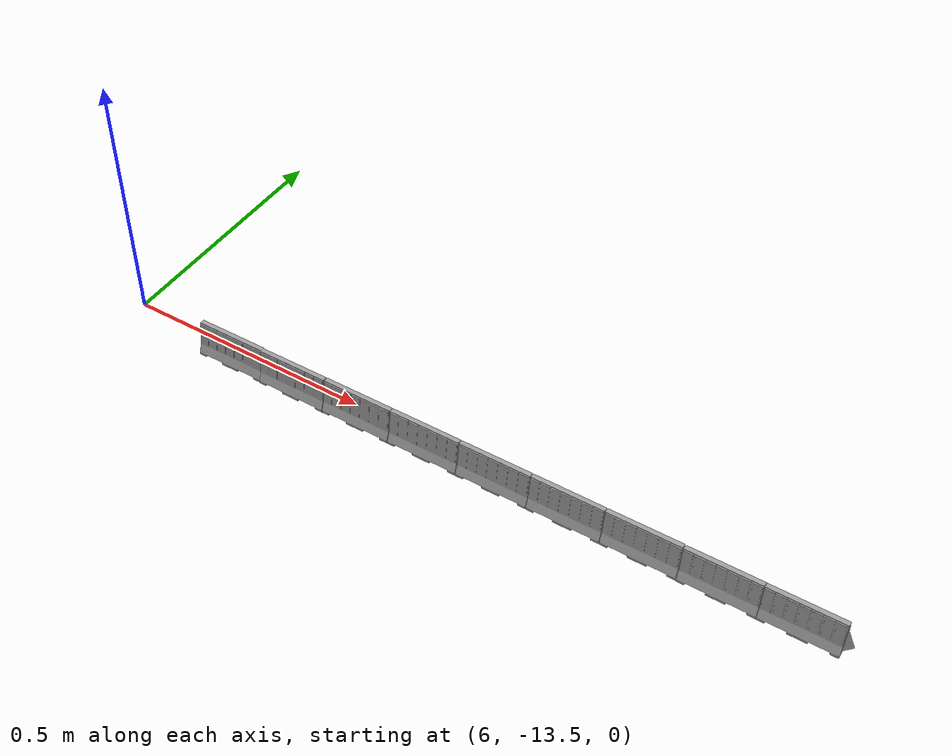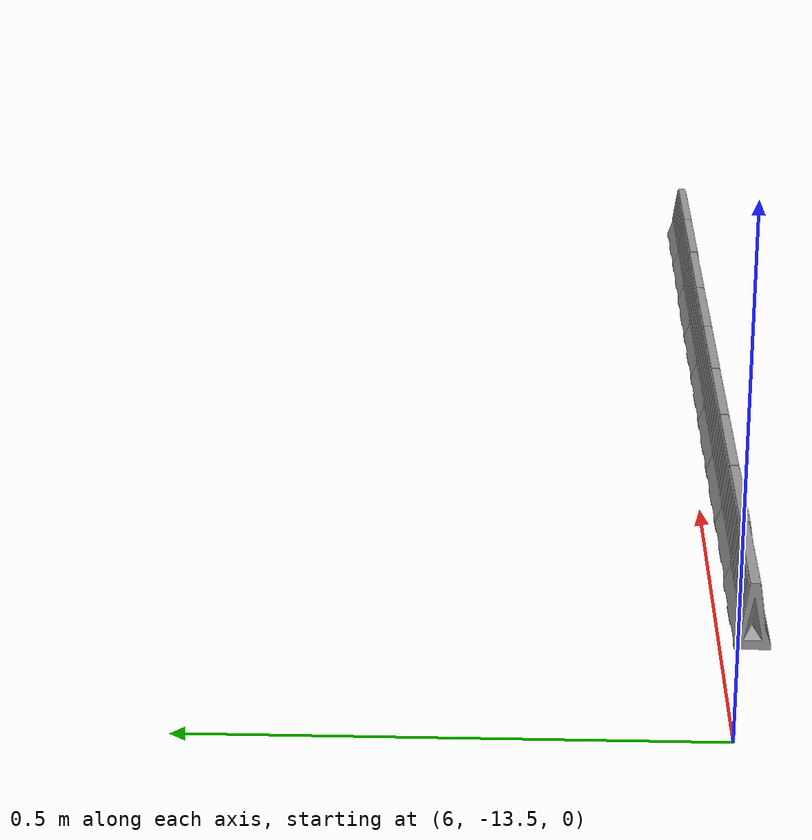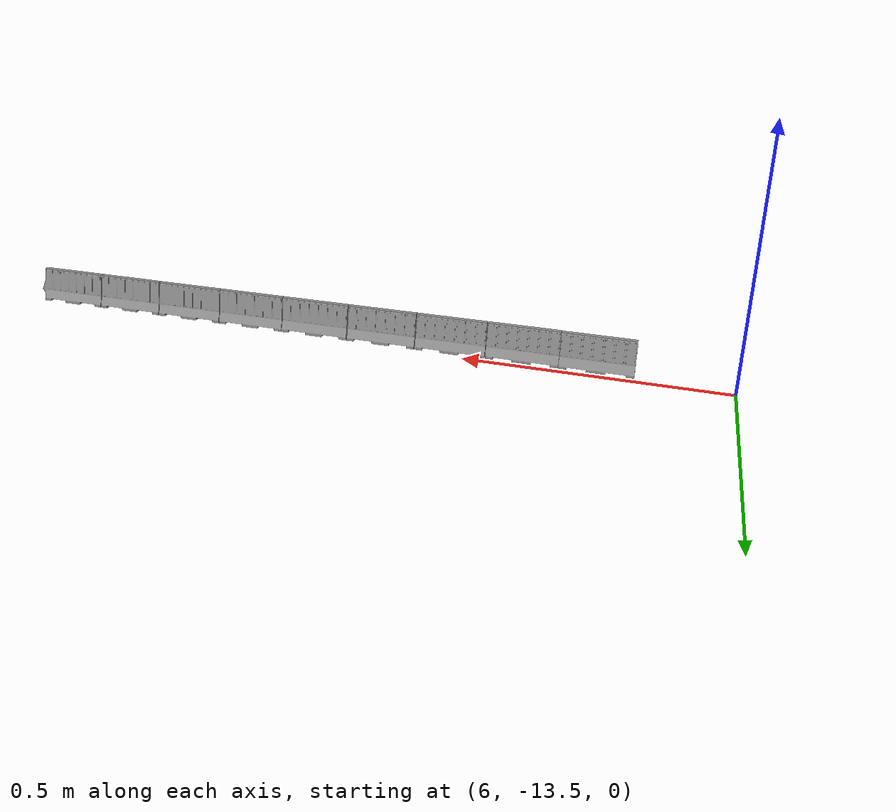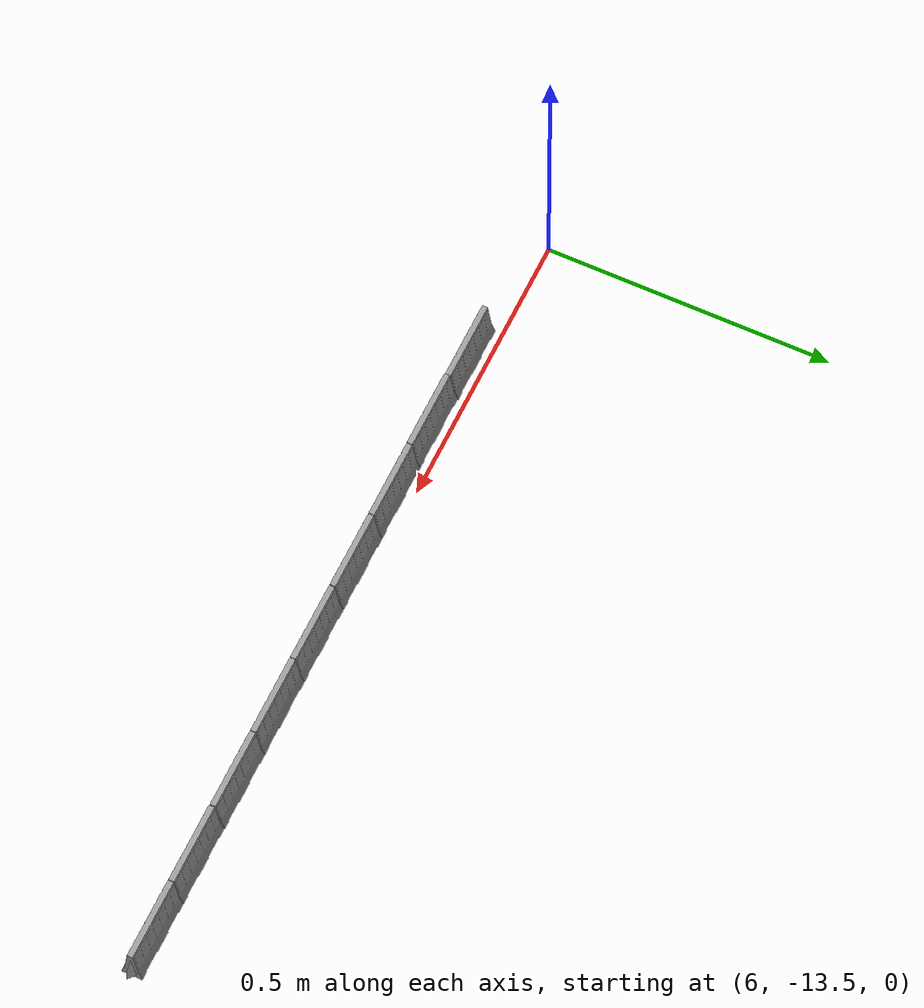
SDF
<sdf version="1.6">
 <world name="bfmc_official">
  <model name="separator_clone">
   <link name="separator::separator::link_0">
    <inertial>
     <mass>1</mass>
     <inertia>
      <ixx>0.166667</ixx>
      <ixy>0</ixy>
      <ixz>0</ixz>
      <iyy>0.166667</iyy>
      <iyz>0</iyz>
      <izz>0.166667</izz>
     </inertia>
    </inertial>
    <visual name="visual">
     <geometry><mesh><uri>model://separator/meshes/separator.dae</uri><scale>1 1 1</scale></mesh></geometry>
     <material>
      <lighting>1</lighting>
      <script><uri>file://media/materials/scripts/gazebo.material</uri><name>Gazebo/Gray</name></script>
      <shader type="vertex"><normal_map>__default__</normal_map></shader>
      <ambient>0.3 0.3 0.3 1</ambient>
      <diffuse>0.7 0.7 0.7 1</diffuse>
      <specular>0.01 0.01 0.01 1</specular>
      <emissive>0 0 0 1</emissive>
     </material>
    </visual>
    <collision name="collision">
     <geometry><mesh><uri>model://separator/meshes/separator.dae</uri><scale>1 1 1</scale></mesh></geometry>
     <surface>
      <friction>
       <ode><mu>1</mu><mu2>1</mu2><fdir1>0 0 0</fdir1><slip1>0</slip1><slip2>0</slip2></ode>
       <torsional>
        <coefficient>1</coefficient>
        <patch_radius>0</patch_radius>
        <surface_radius>0</surface_radius>
        <use_patch_radius>1</use_patch_radius>
        <ode><slip>0</slip></ode>
       </torsional>
      </friction>
      <bounce><restitution_coefficient>0</restitution_coefficient><threshold>1e+06</threshold></bounce>
      <contact>
       <collide_without_contact>0</collide_without_contact>
       <collide_without_contact_bitmask>1</collide_without_contact_bitmask>
       <collide_bitmask>1</collide_bitmask>
       <ode>
        <soft_cfm>0</soft_cfm>
        <soft_erp>0.2</soft_erp>
        <kp>1e+13</kp>
        <kd>1</kd>
        <max_vel>0.01</max_vel>
        <min_depth>0</min_depth>
       </ode>
       <bullet>
        <split_impulse>1</split_impulse>
        <split_impulse_penetration_threshold>-0.01</split_impulse_penetration_threshold>
        <soft_cfm>0</soft_cfm>
        <soft_erp>0.2</soft_erp>
        <kp>1e+13</kp>
        <kd>1</kd>
       </bullet>
      </contact>
     </surface>
    </collision>
   </link>
   <static>1</static>
   <pose>6.38806 -13.5317 0.044642 0 -0 1.57324</pose>
  </model>
  <model name="separator_clone_clone">
   <link name="separator::separator::link_0">
    <inertial>
     <mass>1</mass>
     <inertia>
      <ixx>0.166667</ixx>
      <ixy>0</ixy>
      <ixz>0</ixz>
      <iyy>0.166667</iyy>
      <iyz>0</iyz>
      <izz>0.166667</izz>
     </inertia>
    </inertial>
    <visual name="visual">
     <geometry><mesh><uri>model://separator/meshes/separator.dae</uri><scale>1 1 1</scale></mesh></geometry>
     <material>
      <lighting>1</lighting>
      <script><uri>file://media/materials/scripts/gazebo.material</uri><name>Gazebo/Gray</name></script>
      <shader type="vertex"><normal_map>__default__</normal_map></shader>
      <ambient>0.3 0.3 0.3 1</ambient>
      <diffuse>0.7 0.7 0.7 1</diffuse>
      <specular>0.01 0.01 0.01 1</specular>
      <emissive>0 0 0 1</emissive>
     </material>
    </visual>
    <collision name="collision">
     <geometry><mesh><uri>model://separator/meshes/separator.dae</uri><scale>1 1 1</scale></mesh></geometry>
     <surface>
      <friction>
       <ode><mu>1</mu><mu2>1</mu2><fdir1>0 0 0</fdir1><slip1>0</slip1><slip2>0</slip2></ode>
       <torsional>
        <coefficient>1</coefficient>
        <patch_radius>0</patch_radius>
        <surface_radius>0</surface_radius>
        <use_patch_radius>1</use_patch_radius>
        <ode><slip>0</slip></ode>
       </torsional>
      </friction>
      <bounce><restitution_coefficient>0</restitution_coefficient><threshold>1e+06</threshold></bounce>
      <contact>
       <collide_without_contact>0</collide_without_contact>
       <collide_without_contact_bitmask>1</collide_without_contact_bitmask>
       <collide_bitmask>1</collide_bitmask>
       <ode>
        <soft_cfm>0</soft_cfm>
        <soft_erp>0.2</soft_erp>
        <kp>1e+13</kp>
        <kd>1</kd>
        <max_vel>0.01</max_vel>
        <min_depth>0</min_depth>
       </ode>
       <bullet>
        <split_impulse>1</split_impulse>
        <split_impulse_penetration_threshold>-0.01</split_impulse_penetration_threshold>
        <soft_cfm>0</soft_cfm>
        <soft_erp>0.2</soft_erp>
        <kp>1e+13</kp>
        <kd>1</kd>
       </bullet>
      </contact>
     </surface>
    </collision>
   </link>
   <static>1</static>
   <pose>6.52931 -13.5311 0.044642 0 -0 1.57324</pose>
  </model>
  <model name="separator_clone_clone_clone">
   <link name="separator::separator::link_0">
    <inertial>
     <mass>1</mass>
     <inertia>
      <ixx>0.166667</ixx>
      <ixy>0</ixy>
      <ixz>0</ixz>
      <iyy>0.166667</iyy>
      <iyz>0</iyz>
      <izz>0.166667</izz>
     </inertia>
    </inertial>
    <visual name="visual">
     <geometry><mesh><uri>model://separator/meshes/separator.dae</uri><scale>1 1 1</scale></mesh></geometry>
     <material>
      <lighting>1</lighting>
      <script><uri>file://media/materials/scripts/gazebo.material</uri><name>Gazebo/Gray</name></script>
      <shader type="vertex"><normal_map>__default__</normal_map></shader>
      <ambient>0.3 0.3 0.3 1</ambient>
      <diffuse>0.7 0.7 0.7 1</diffuse>
      <specular>0.01 0.01 0.01 1</specular>
      <emissive>0 0 0 1</emissive>
     </material>
    </visual>
    <collision name="collision">
     <geometry><mesh><uri>model://separator/meshes/separator.dae</uri><scale>1 1 1</scale></mesh></geometry>
     <surface>
      <friction>
       <ode><mu>1</mu><mu2>1</mu2><fdir1>0 0 0</fdir1><slip1>0</slip1><slip2>0</slip2></ode>
       <torsional>
        <coefficient>1</coefficient>
        <patch_radius>0</patch_radius>
        <surface_radius>0</surface_radius>
        <use_patch_radius>1</use_patch_radius>
        <ode><slip>0</slip></ode>
       </torsional>
      </friction>
      <bounce><restitution_coefficient>0</restitution_coefficient><threshold>1e+06</threshold></bounce>
      <contact>
       <collide_without_contact>0</collide_without_contact>
       <collide_without_contact_bitmask>1</collide_without_contact_bitmask>
       <collide_bitmask>1</collide_bitmask>
       <ode>
        <soft_cfm>0</soft_cfm>
        <soft_erp>0.2</soft_erp>
        <kp>1e+13</kp>
        <kd>1</kd>
        <max_vel>0.01</max_vel>
        <min_depth>0</min_depth>
       </ode>
       <bullet>
        <split_impulse>1</split_impulse>
        <split_impulse_penetration_threshold>-0.01</split_impulse_penetration_threshold>
        <soft_cfm>0</soft_cfm>
        <soft_erp>0.2</soft_erp>
        <kp>1e+13</kp>
        <kd>1</kd>
       </bullet>
      </contact>
     </surface>
    </collision>
   </link>
   <static>1</static>
   <pose>6.67069 -13.5307 0.044642 0 -0 1.57324</pose>
  </model>
  <model name="separator_clone_clone_clone_clone">
   <link name="separator::separator::link_0">
    <inertial>
     <mass>1</mass>
     <inertia>
      <ixx>0.166667</ixx>
      <ixy>0</ixy>
      <ixz>0</ixz>
      <iyy>0.166667</iyy>
      <iyz>0</iyz>
      <izz>0.166667</izz>
     </inertia>
    </inertial>
    <visual name="visual">
     <geometry><mesh><uri>model://separator/meshes/separator.dae</uri><scale>1 1 1</scale></mesh></geometry>
     <material>
      <lighting>1</lighting>
      <script><uri>file://media/materials/scripts/gazebo.material</uri><name>Gazebo/Gray</name></script>
      <shader type="vertex"><normal_map>__default__</normal_map></shader>
      <ambient>0.3 0.3 0.3 1</ambient>
      <diffuse>0.7 0.7 0.7 1</diffuse>
      <specular>0.01 0.01 0.01 1</specular>
      <emissive>0 0 0 1</emissive>
     </material>
    </visual>
    <collision name="collision">
     <geometry><mesh><uri>model://separator/meshes/separator.dae</uri><scale>1 1 1</scale></mesh></geometry>
     <surface>
      <friction>
       <ode><mu>1</mu><mu2>1</mu2><fdir1>0 0 0</fdir1><slip1>0</slip1><slip2>0</slip2></ode>
       <torsional>
        <coefficient>1</coefficient>
        <patch_radius>0</patch_radius>
        <surface_radius>0</surface_radius>
        <use_patch_radius>1</use_patch_radius>
        <ode><slip>0</slip></ode>
       </torsional>
      </friction>
      <bounce><restitution_coefficient>0</restitution_coefficient><threshold>1e+06</threshold></bounce>
      <contact>
       <collide_without_contact>0</collide_without_contact>
       <collide_without_contact_bitmask>1</collide_without_contact_bitmask>
       <collide_bitmask>1</collide_bitmask>
       <ode>
        <soft_cfm>0</soft_cfm>
        <soft_erp>0.2</soft_erp>
        <kp>1e+13</kp>
        <kd>1</kd>
        <max_vel>0.01</max_vel>
        <min_depth>0</min_depth>
       </ode>
       <bullet>
        <split_impulse>1</split_impulse>
        <split_impulse_penetration_threshold>-0.01</split_impulse_penetration_threshold>
        <soft_cfm>0</soft_cfm>
        <soft_erp>0.2</soft_erp>
        <kp>1e+13</kp>
        <kd>1</kd>
       </bullet>
      </contact>
     </surface>
    </collision>
   </link>
   <static>1</static>
   <pose>6.81255 -13.5305 0.044642 0 -0 1.57324</pose>
  </model>
  <model name="separator_clone_clone_clone_clone_clone">
   <link name="separator::separator::link_0">
    <inertial>
     <mass>1</mass>
     <inertia>
      <ixx>0.166667</ixx>
      <ixy>0</ixy>
      <ixz>0</ixz>
      <iyy>0.166667</iyy>
      <iyz>0</iyz>
      <izz>0.166667</izz>
     </inertia>
    </inertial>
    <visual name="visual">
     <geometry><mesh><uri>model://separator/meshes/separator.dae</uri><scale>1 1 1</scale></mesh></geometry>
     <material>
      <lighting>1</lighting>
      <script><uri>file://media/materials/scripts/gazebo.material</uri><name>Gazebo/Gray</name></script>
      <shader type="vertex"><normal_map>__default__</normal_map></shader>
      <ambient>0.3 0.3 0.3 1</ambient>
      <diffuse>0.7 0.7 0.7 1</diffuse>
      <specular>0.01 0.01 0.01 1</specular>
      <emissive>0 0 0 1</emissive>
     </material>
    </visual>
    <collision name="collision">
     <geometry><mesh><uri>model://separator/meshes/separator.dae</uri><scale>1 1 1</scale></mesh></geometry>
     <surface>
      <friction>
       <ode><mu>1</mu><mu2>1</mu2><fdir1>0 0 0</fdir1><slip1>0</slip1><slip2>0</slip2></ode>
       <torsional>
        <coefficient>1</coefficient>
        <patch_radius>0</patch_radius>
        <surface_radius>0</surface_radius>
        <use_patch_radius>1</use_patch_radius>
        <ode><slip>0</slip></ode>
       </torsional>
      </friction>
      <bounce><restitution_coefficient>0</restitution_coefficient><threshold>1e+06</threshold></bounce>
      <contact>
       <collide_without_contact>0</collide_without_contact>
       <collide_without_contact_bitmask>1</collide_without_contact_bitmask>
       <collide_bitmask>1</collide_bitmask>
       <ode>
        <soft_cfm>0</soft_cfm>
        <soft_erp>0.2</soft_erp>
        <kp>1e+13</kp>
        <kd>1</kd>
        <max_vel>0.01</max_vel>
        <min_depth>0</min_depth>
       </ode>
       <bullet>
        <split_impulse>1</split_impulse>
        <split_impulse_penetration_threshold>-0.01</split_impulse_penetration_threshold>
        <soft_cfm>0</soft_cfm>
        <soft_erp>0.2</soft_erp>
        <kp>1e+13</kp>
        <kd>1</kd>
       </bullet>
      </contact>
     </surface>
    </collision>
   </link>
   <static>1</static>
   <pose>6.95349 -13.5302 0.044642 0 -0 1.57324</pose>
  </model>
  <model name="separator_clone_clone_clone_clone_clone_clone">
   <link name="separator::separator::link_0">
    <inertial>
     <mass>1</mass>
     <inertia>
      <ixx>0.166667</ixx>
      <ixy>0</ixy>
      <ixz>0</ixz>
      <iyy>0.166667</iyy>
      <iyz>0</iyz>
      <izz>0.166667</izz>
     </inertia>
    </inertial>
    <visual name="visual">
     <geometry><mesh><uri>model://separator/meshes/separator.dae</uri><scale>1 1 1</scale></mesh></geometry>
     <material>
      <lighting>1</lighting>
      <script><uri>file://media/materials/scripts/gazebo.material</uri><name>Gazebo/Gray</name></script>
      <shader type="vertex"><normal_map>__default__</normal_map></shader>
      <ambient>0.3 0.3 0.3 1</ambient>
      <diffuse>0.7 0.7 0.7 1</diffuse>
      <specular>0.01 0.01 0.01 1</specular>
      <emissive>0 0 0 1</emissive>
     </material>
    </visual>
    <collision name="collision">
     <geometry><mesh><uri>model://separator/meshes/separator.dae</uri><scale>1 1 1</scale></mesh></geometry>
     <surface>
      <friction>
       <ode><mu>1</mu><mu2>1</mu2><fdir1>0 0 0</fdir1><slip1>0</slip1><slip2>0</slip2></ode>
       <torsional>
        <coefficient>1</coefficient>
        <patch_radius>0</patch_radius>
        <surface_radius>0</surface_radius>
        <use_patch_radius>1</use_patch_radius>
        <ode><slip>0</slip></ode>
       </torsional>
      </friction>
      <bounce><restitution_coefficient>0</restitution_coefficient><threshold>1e+06</threshold></bounce>
      <contact>
       <collide_without_contact>0</collide_without_contact>
       <collide_without_contact_bitmask>1</collide_without_contact_bitmask>
       <collide_bitmask>1</collide_bitmask>
       <ode>
        <soft_cfm>0</soft_cfm>
        <soft_erp>0.2</soft_erp>
        <kp>1e+13</kp>
        <kd>1</kd>
        <max_vel>0.01</max_vel>
        <min_depth>0</min_depth>
       </ode>
       <bullet>
        <split_impulse>1</split_impulse>
        <split_impulse_penetration_threshold>-0.01</split_impulse_penetration_threshold>
        <soft_cfm>0</soft_cfm>
        <soft_erp>0.2</soft_erp>
        <kp>1e+13</kp>
        <kd>1</kd>
       </bullet>
      </contact>
     </surface>
    </collision>
   </link>
   <static>1</static>
   <pose>7.09476 -13.5299 0.044642 0 -0 1.57324</pose>
  </model>
  <model name="separator_clone_clone_clone_clone_clone_clone_clone">
   <link name="separator::separator::link_0">
    <inertial>
     <mass>1</mass>
     <inertia>
      <ixx>0.166667</ixx>
      <ixy>0</ixy>
      <ixz>0</ixz>
      <iyy>0.166667</iyy>
      <iyz>0</iyz>
      <izz>0.166667</izz>
     </inertia>
    </inertial>
    <visual name="visual">
     <geometry><mesh><uri>model://separator/meshes/separator.dae</uri><scale>1 1 1</scale></mesh></geometry>
     <material>
      <lighting>1</lighting>
      <script><uri>file://media/materials/scripts/gazebo.material</uri><name>Gazebo/Gray</name></script>
      <shader type="vertex"><normal_map>__default__</normal_map></shader>
      <ambient>0.3 0.3 0.3 1</ambient>
      <diffuse>0.7 0.7 0.7 1</diffuse>
      <specular>0.01 0.01 0.01 1</specular>
      <emissive>0 0 0 1</emissive>
     </material>
    </visual>
    <collision name="collision">
     <geometry><mesh><uri>model://separator/meshes/separator.dae</uri><scale>1 1 1</scale></mesh></geometry>
     <surface>
      <friction>
       <ode><mu>1</mu><mu2>1</mu2><fdir1>0 0 0</fdir1><slip1>0</slip1><slip2>0</slip2></ode>
       <torsional>
        <coefficient>1</coefficient>
        <patch_radius>0</patch_radius>
        <surface_radius>0</surface_radius>
        <use_patch_radius>1</use_patch_radius>
        <ode><slip>0</slip></ode>
       </torsional>
      </friction>
      <bounce><restitution_coefficient>0</restitution_coefficient><threshold>1e+06</threshold></bounce>
      <contact>
       <collide_without_contact>0</collide_without_contact>
       <collide_without_contact_bitmask>1</collide_without_contact_bitmask>
       <collide_bitmask>1</collide_bitmask>
       <ode>
        <soft_cfm>0</soft_cfm>
        <soft_erp>0.2</soft_erp>
        <kp>1e+13</kp>
        <kd>1</kd>
        <max_vel>0.01</max_vel>
        <min_depth>0</min_depth>
       </ode>
       <bullet>
        <split_impulse>1</split_impulse>
        <split_impulse_penetration_threshold>-0.01</split_impulse_penetration_threshold>
        <soft_cfm>0</soft_cfm>
        <soft_erp>0.2</soft_erp>
        <kp>1e+13</kp>
        <kd>1</kd>
       </bullet>
      </contact>
     </surface>
    </collision>
   </link>
   <static>1</static>
   <pose>7.23664 -13.5303 0.044642 0 -0 1.57324</pose>
  </model>
  <model name="separator_clone_clone_clone_clone_clone_clone_clone_clone">
   <link name="separator::separator::link_0">
    <inertial>
     <mass>1</mass>
     <inertia>
      <ixx>0.166667</ixx>
      <ixy>0</ixy>
      <ixz>0</ixz>
      <iyy>0.166667</iyy>
      <iyz>0</iyz>
      <izz>0.166667</izz>
     </inertia>
    </inertial>
    <visual name="visual">
     <geometry><mesh><uri>model://separator/meshes/separator.dae</uri><scale>1 1 1</scale></mesh></geometry>
     <material>
      <lighting>1</lighting>
      <script><uri>file://media/materials/scripts/gazebo.material</uri><name>Gazebo/Gray</name></script>
      <shader type="vertex"><normal_map>__default__</normal_map></shader>
      <ambient>0.3 0.3 0.3 1</ambient>
      <diffuse>0.7 0.7 0.7 1</diffuse>
      <specular>0.01 0.01 0.01 1</specular>
      <emissive>0 0 0 1</emissive>
     </material>
    </visual>
    <collision name="collision">
     <geometry><mesh><uri>model://separator/meshes/separator.dae</uri><scale>1 1 1</scale></mesh></geometry>
     <surface>
      <friction>
       <ode><mu>1</mu><mu2>1</mu2><fdir1>0 0 0</fdir1><slip1>0</slip1><slip2>0</slip2></ode>
       <torsional>
        <coefficient>1</coefficient>
        <patch_radius>0</patch_radius>
        <surface_radius>0</surface_radius>
        <use_patch_radius>1</use_patch_radius>
        <ode><slip>0</slip></ode>
       </torsional>
      </friction>
      <bounce><restitution_coefficient>0</restitution_coefficient><threshold>1e+06</threshold></bounce>
      <contact>
       <collide_without_contact>0</collide_without_contact>
       <collide_without_contact_bitmask>1</collide_without_contact_bitmask>
       <collide_bitmask>1</collide_bitmask>
       <ode>
        <soft_cfm>0</soft_cfm>
        <soft_erp>0.2</soft_erp>
        <kp>1e+13</kp>
        <kd>1</kd>
        <max_vel>0.01</max_vel>
        <min_depth>0</min_depth>
       </ode>
       <bullet>
        <split_impulse>1</split_impulse>
        <split_impulse_penetration_threshold>-0.01</split_impulse_penetration_threshold>
        <soft_cfm>0</soft_cfm>
        <soft_erp>0.2</soft_erp>
        <kp>1e+13</kp>
        <kd>1</kd>
       </bullet>
      </contact>
     </surface>
    </collision>
   </link>
   <static>1</static>
   <pose>7.37782 -13.5302 0.044642 0 -0 1.57324</pose>
  </model>
  <model name="separator_clone_clone_0">
   <link name="separator::separator::link_0">
    <inertial>
     <mass>1</mass>
     <inertia>
      <ixx>0.166667</ixx>
      <ixy>0</ixy>
      <ixz>0</ixz>
      <iyy>0.166667</iyy>
      <iyz>0</iyz>
      <izz>0.166667</izz>
     </inertia>
    </inertial>
    <visual name="visual">
     <geometry><mesh><uri>model://separator/meshes/separator.dae</uri><scale>1 1 1</scale></mesh></geometry>
     <material>
      <lighting>1</lighting>
      <script><uri>file://media/materials/scripts/gazebo.material</uri><name>Gazebo/Gray</name></script>
      <shader type="vertex"><normal_map>__default__</normal_map></shader>
      <ambient>0.3 0.3 0.3 1</ambient>
      <diffuse>0.7 0.7 0.7 1</diffuse>
      <specular>0.01 0.01 0.01 1</specular>
      <emissive>0 0 0 1</emissive>
     </material>
    </visual>
    <collision name="collision">
     <geometry><mesh><uri>model://separator/meshes/separator.dae</uri><scale>1 1 1</scale></mesh></geometry>
     <surface>
      <friction>
       <ode><mu>1</mu><mu2>1</mu2><fdir1>0 0 0</fdir1><slip1>0</slip1><slip2>0</slip2></ode>
       <torsional>
        <coefficient>1</coefficient>
        <patch_radius>0</patch_radius>
        <surface_radius>0</surface_radius>
        <use_patch_radius>1</use_patch_radius>
        <ode><slip>0</slip></ode>
       </torsional>
      </friction>
      <bounce><restitution_coefficient>0</restitution_coefficient><threshold>1e+06</threshold></bounce>
      <contact>
       <collide_without_contact>0</collide_without_contact>
       <collide_without_contact_bitmask>1</collide_without_contact_bitmask>
       <collide_bitmask>1</collide_bitmask>
       <ode>
        <soft_cfm>0</soft_cfm>
        <soft_erp>0.2</soft_erp>
        <kp>1e+13</kp>
        <kd>1</kd>
        <max_vel>0.01</max_vel>
        <min_depth>0</min_depth>
       </ode>
       <bullet>
        <split_impulse>1</split_impulse>
        <split_impulse_penetration_threshold>-0.01</split_impulse_penetration_threshold>
        <soft_cfm>0</soft_cfm>
        <soft_erp>0.2</soft_erp>
        <kp>1e+13</kp>
        <kd>1</kd>
       </bullet>
      </contact>
     </surface>
    </collision>
   </link>
   <static>1</static>
   <pose>6.24779 -13.5307 0.044642 0 -0 1.57324</pose>
  </model>
 </world>
</sdf>
